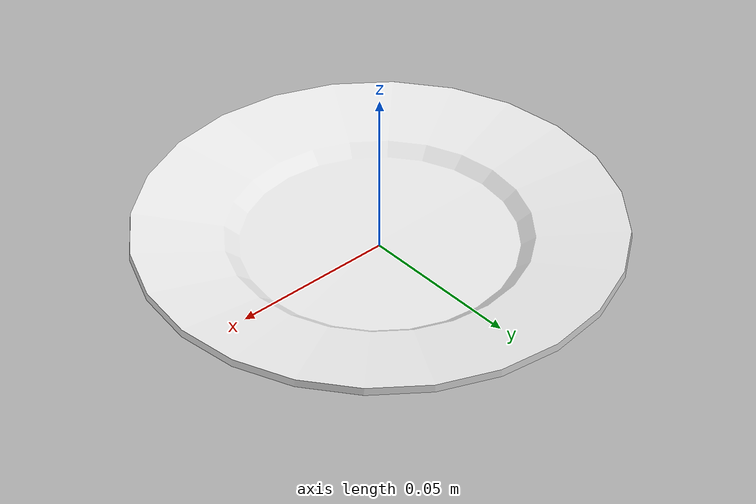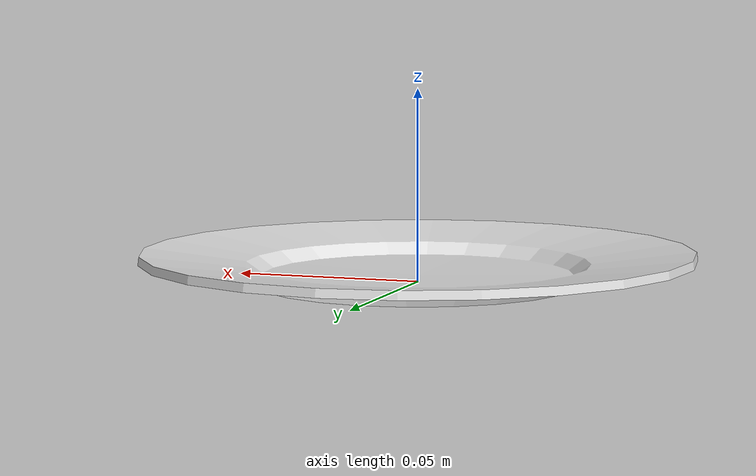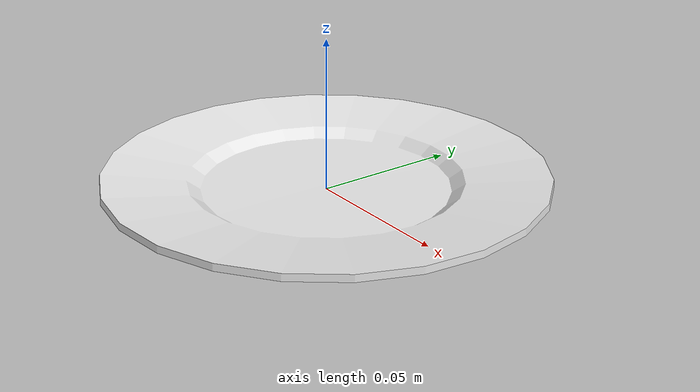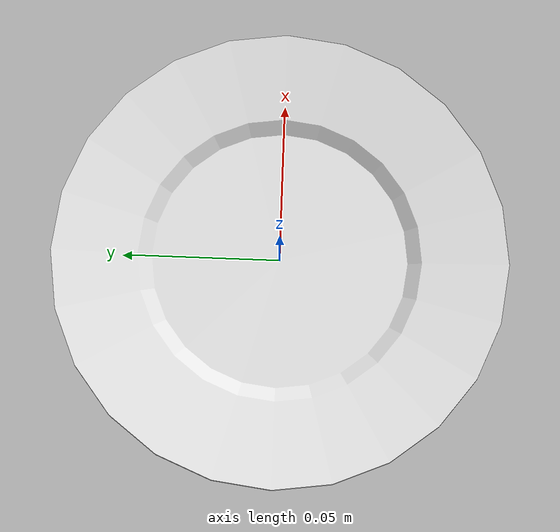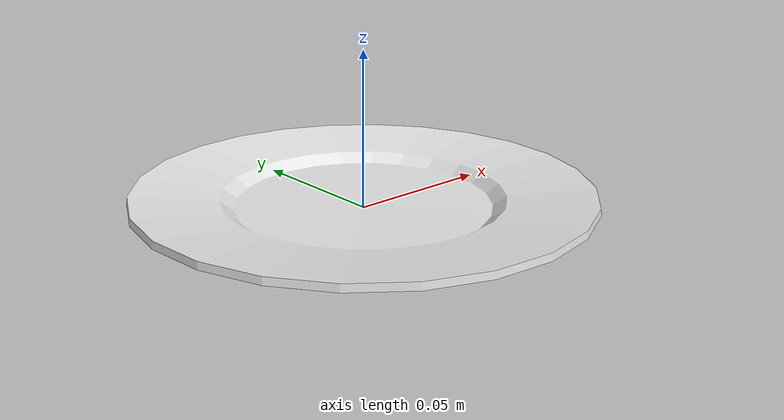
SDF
<?xml version='1.0'?>
<sdf version="1.4">
	<model name="plate_small">
		<static>1</static>
		<link name="link">
			<visual name="mesh">
				<geometry>
					<mesh>
						<uri>model://meshes/plate_small.dae</uri>
					</mesh>
				</geometry>
			</visual>
			<collision name="collider">
				<pose>0 0 0.005 0 0 0</pose>
				<geometry>
					<cylinder>
						<radius>0.079</radius>
						<length>0.01</length>
					</cylinder>
				</geometry>
			</collision>
		</link>
	</model>
</sdf>
